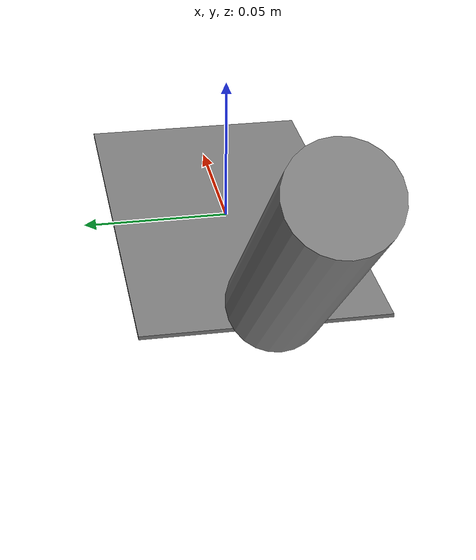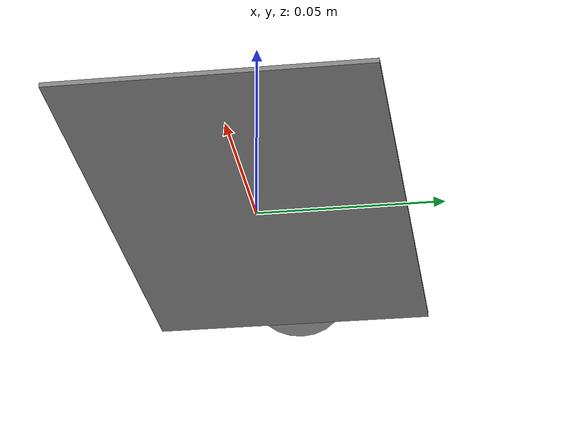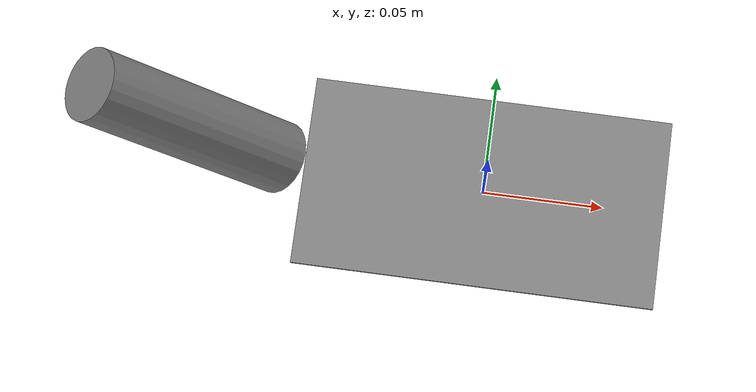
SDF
<?xml version="1.0"?>
<sdf version="1.8">
  <model name="spatula">
    <link name="pad">
      <pose>0 0 0 0 0 0</pose>
      <inertial>
        <pose>0 0 0 0 0 0</pose>
        <mass>0.05</mass>
        <inertia>
            <ixx>1.04e-5</ixx>
            <ixy>0</ixy>
            <ixz>0</ixz>
            <iyy>9.38e-5</iyy>
            <iyz>0</iyz>
            <izz>1.04e-4</izz>
        </inertia>
      </inertial>
      <visual name="pad_visual">
        <pose>0 0 0 0 0 0</pose>
        <geometry>
          <box>
            <size>0.15 0.08 0.0012</size>
          </box>
        </geometry>
        <material>
          <ambient>0.5 0.5 0.5 1</ambient>
          <diffuse>0.5 0.5 0.5 1</diffuse>
          <specular>0 0 0 0</specular>
          <emissive>0 0 0 1</emissive>
        </material>
      </visual>
      <collision name="pad_collision">
        <pose>0 0 0 0 0 0</pose>
        <geometry>
          <box>
            <size>0.15 0.08 0.0012</size>
          </box>
        </geometry>
        <drake:proximity_properties>
          <drake:rigid_hydroelastic/>
          <drake:mesh_resolution_hint>0.04</drake:mesh_resolution_hint>
          <drake:hydroelastic_modulus>1e5</drake:hydroelastic_modulus>
          <drake:hunt_crossley_dissipation>1.0</drake:hunt_crossley_dissipation>
          <drake:mu_static>0.4</drake:mu_static>
          <drake:mu_dynamic>0.4</drake:mu_dynamic>
        </drake:proximity_properties>
      </collision>
    </link>

    <link name="handle">
      <pose relative_to="joint">0.07 0 0 0 1.571 0</pose>
      <inertial>
        <mass>0.02</mass>
        <inertia>
          <ixx>2e-5</ixx>
          <ixy>0</ixy>
          <ixz>0</ixz>
          <iyy>2e-5</iyy>
          <iyz>0</iyz>
          <izz>3e-6</izz>
        </inertia>
      </inertial>
      <visual name="handle_visual">
        <geometry>
          <cylinder>
            <radius>0.015</radius>
            <length>0.10</length>
          </cylinder>
        </geometry>
        <material>
          <ambient>0.5 0.5 0.5 1</ambient>
          <diffuse>0.5 0.5 0.5 1</diffuse>
          <specular>0 0 0 0</specular>
          <emissive>0 0 0 1</emissive>
        </material>
      </visual>
      <collision name='handle_collision'>
        <geometry>
          <cylinder>
            <radius>0.015</radius>
            <length>0.10</length>
          </cylinder>
        </geometry>
        <drake:proximity_properties>
            <drake:rigid_hydroelastic/>
            <drake:mesh_resolution_hint>0.02</drake:mesh_resolution_hint>
            <drake:hunt_crossley_dissipation>1.0</drake:hunt_crossley_dissipation>
            <drake:mu_static>0.4</drake:mu_static>
            <drake:mu_dynamic>0.4</drake:mu_dynamic>
        </drake:proximity_properties>
      </collision>
    </link>

    <!-- joints - always x pointing forward to the next link, y to the left, z upward-->
    <joint name="joint" type="fixed">
      <pose relative_to="pad">-0.07 0 0 3.142 -2.357 0</pose>
      <parent>pad</parent>
      <child>handle</child>
    </joint>
  </model>
</sdf>
